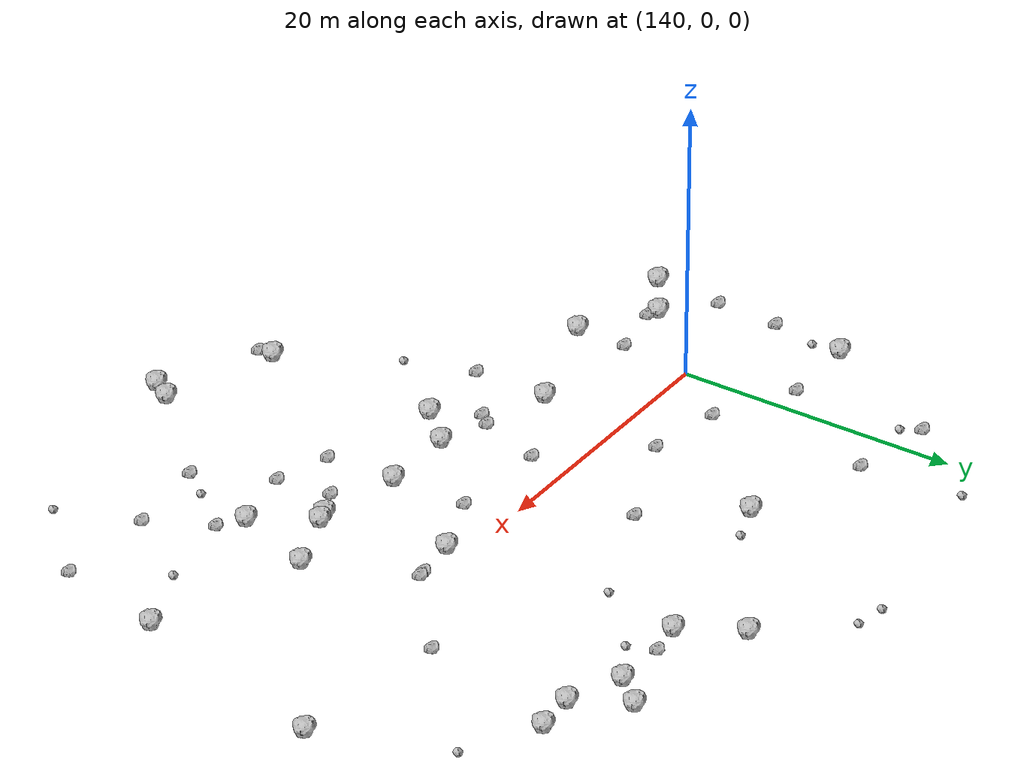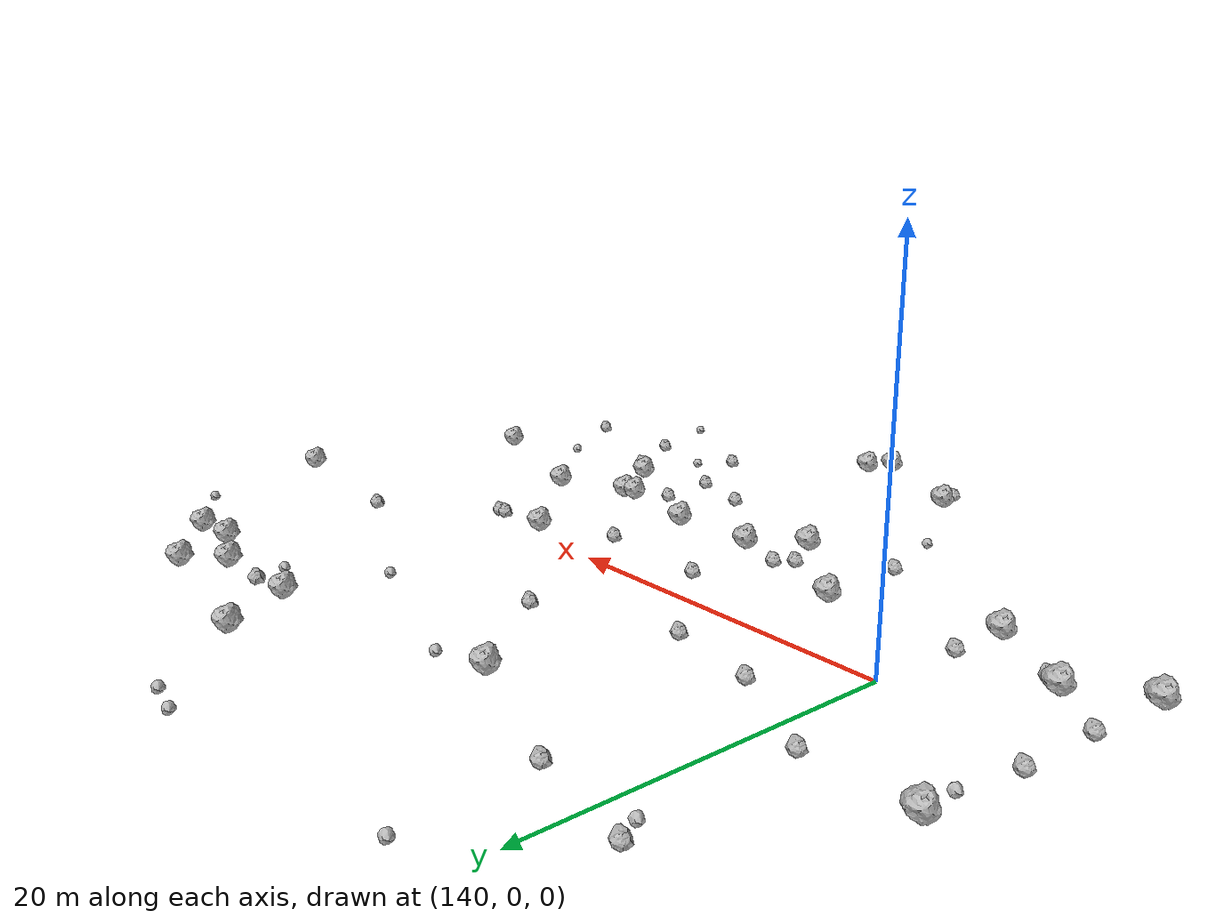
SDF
<sdf version="1.6">
 <world name="default">
  <include><uri>model://sun</uri></include>
  <model name="rock1_4_2">
   <include><uri>model://rock1</uri><pose>161.69526355006286 -8.525875678568418 0.5 0 0 0</pose></include>
  </model>
  <model name="rock1_4_3">
   <include><uri>model://rock1</uri><pose>172.77117775496242 -7.899467867519597 0.5 0 0 0</pose></include>
  </model>
  <model name="rock1_4_4">
   <include><uri>model://rock1</uri><pose>167.47410529267674 -9.852245993962935 0.5 0 0 0</pose></include>
  </model>
  <model name="rock1_4_5">
   <include><uri>model://rock1</uri><pose>168.23202391982647 -9.653271010893029 0.5 0 0 0</pose></include>
  </model>
  <model name="rock1_4_6">
   <include><uri>model://rock1</uri><pose>160.8360853337788 -28.191836001266278 0.5 0 0 0</pose></include>
  </model>
  <model name="rock1_4_7">
   <include><uri>model://rock1</uri><pose>172.31116689686385 15.83350924911663 0.5 0 0 0</pose></include>
  </model>
  <model name="rock1_4_8">
   <include><uri>model://rock1</uri><pose>132.35718022633182 7.265210884816675 0.5 0 0 0</pose></include>
  </model>
  <model name="rock1_4_9">
   <include><uri>model://rock1</uri><pose>179.06493883241507 14.530867061956414 0.5 0 0 0</pose></include>
  </model>
  <model name="rock1_4_10">
   <include><uri>model://rock1</uri><pose>187.3875729603317 2.8925439765310443 0.5 0 0 0</pose></include>
  </model>
  <model name="rock1_4_11">
   <include><uri>model://rock1</uri><pose>166.11293153561246 15.523923665274744 0.5 0 0 0</pose></include>
  </model>
  <model name="rock1_4_12">
   <include><uri>model://rock1</uri><pose>174.16174171332023 17.870499443776318 0.5 0 0 0</pose></include>
  </model>
  <model name="rock1_4_13">
   <include><uri>model://rock1</uri><pose>147.90602200392684 -6.013456500330854 0.5 0 0 0</pose></include>
  </model>
  <model name="rock1_4_14">
   <include><uri>model://rock1</uri><pose>176.14742862572683 14.292358955499097 0.5 0 0 0</pose></include>
  </model>
  <model name="rock1_4_15">
   <include><uri>model://rock1</uri><pose>139.57133838225644 -8.892626098683124 0.5 0 0 0</pose></include>
  </model>
  <model name="rock1_4_16">
   <include><uri>model://rock1</uri><pose>170.75473794583135 -13.601720094275937 0.5 0 0 0</pose></include>
  </model>
  <model name="rock1_4_17">
   <include><uri>model://rock1</uri><pose>131.1908565304941 -7.846225018016916 0.5 0 0 0</pose></include>
  </model>
  <model name="rock1_4_18">
   <include><uri>model://rock1</uri><pose>161.78643454147783 -26.679996992049052 0.5 0 0 0</pose></include>
  </model>
  <model name="rock1_4_19">
   <include><uri>model://rock1</uri><pose>183.41409723096135 -11.615067270590586 0.5 0 0 0</pose></include>
  </model>
  <model name="rock1_4_20">
   <include><uri>model://rock1</uri><pose>166.2943645747454 -1.2363981803120794 0.5 0 0 0</pose></include>
  </model>
  <model name="rock1_4_21">
   <include><uri>model://rock1</uri><pose>153.633341609953 -23.95607967481787 0.5 0 0 0</pose></include>
  </model>
  <model name="rock1_4_22">
   <include><uri>model://rock1</uri><pose>163.77545590862042 19.530835858995175 0.5 0 0 0</pose></include>
  </model>
  <model name="rock1_4_23">
   <include><uri>model://rock1</uri><pose>156.2267375343245 -8.575916024498728 0.5 0 0 0</pose></include>
  </model>
  <model name="rock1_4_24">
   <include><uri>model://rock1</uri><pose>134.65168880717903 -5.621083808789148 0.5 0 0 0</pose></include>
  </model>
  <model name="rock1_4_25">
   <include><uri>model://rock1</uri><pose>153.74145056427585 -11.194847789820244 0.5 0 0 0</pose></include>
  </model>
  <model name="rock1_4_26">
   <include><uri>model://rock1</uri><pose>152.04764083594245 12.44603919069555 0.5 0 0 0</pose></include>
  </model>
  <model name="rock2_4_0">
   <include><uri>model://rock2</uri><pose>138.02862049417985 7.380732795546734 0.3 0 0 0</pose></include>
  </model>
  <model name="rock2_4_1">
   <include><uri>model://rock2</uri><pose>165.76181989340665 -14.7337509473507 0.3 0 0 0</pose></include>
  </model>
  <model name="rock2_4_2">
   <include><uri>model://rock2</uri><pose>147.7956192247981 -11.465359258381675 0.3 0 0 0</pose></include>
  </model>
  <model name="rock2_4_3">
   <include><uri>model://rock2</uri><pose>135.35644027351938 -6.0152407146376845 0.3 0 0 0</pose></include>
  </model>
  <model name="rock2_4_4">
   <include><uri>model://rock2</uri><pose>153.5936644943896 -25.09722213554228 0.3 0 0 0</pose></include>
  </model>
  <model name="rock2_4_5">
   <include><uri>model://rock2</uri><pose>148.9767685873613 3.3895784534242566 0.3 0 0 0</pose></include>
  </model>
  <model name="rock2_4_6">
   <include><uri>model://rock2</uri><pose>181.63371800045275 -19.2903223889849 0.3 0 0 0</pose></include>
  </model>
  <model name="rock2_4_7">
   <include><uri>model://rock2</uri><pose>151.98799895823498 -8.182889903066929 0.3 0 0 0</pose></include>
  </model>
  <model name="rock2_4_8">
   <include><uri>model://rock2</uri><pose>161.843729683202 -13.55547908520131 0.3 0 0 0</pose></include>
  </model>
  <model name="rock2_4_9">
   <include><uri>model://rock2</uri><pose>172.29290214960332 -14.78763876928928 0.3 0 0 0</pose></include>
  </model>
  <model name="rock2_4_10">
   <include><uri>model://rock2</uri><pose>156.55746206105982 6.613182623166431 0.3 0 0 0</pose></include>
  </model>
  <model name="rock2_4_11">
   <include><uri>model://rock2</uri><pose>131.4012875251271 -2.806109520146883 0.3 0 0 0</pose></include>
  </model>
  <model name="rock2_4_12">
   <include><uri>model://rock2</uri><pose>168.44256482954017 15.903793427992746 0.3 0 0 0</pose></include>
  </model>
  <model name="rock2_4_13">
   <include><uri>model://rock2</uri><pose>143.65709802403964 4.381503143839119 0.3 0 0 0</pose></include>
  </model>
  <model name="rock2_4_14">
   <include><uri>model://rock2</uri><pose>139.53436654045188 -5.145972936695948 0.3 0 0 0</pose></include>
  </model>
  <model name="rock2_4_15">
   <include><uri>model://rock2</uri><pose>168.28846052475856 -19.83371184558549 0.3 0 0 0</pose></include>
  </model>
  <model name="rock2_4_16">
   <include><uri>model://rock2</uri><pose>152.78915290977872 -7.269555055972688 0.3 0 0 0</pose></include>
  </model>
  <model name="rock2_4_17">
   <include><uri>model://rock2</uri><pose>169.77408432788548 -0.802059707845185 0.3 0 0 0</pose></include>
  </model>
  <model name="rock2_4_18">
   <include><uri>model://rock2</uri><pose>175.98152188229764 4.348575253562679 0.3 0 0 0</pose></include>
  </model>
  <model name="rock2_4_19">
   <include><uri>model://rock2</uri><pose>143.6202613598535 15.605432712348318 0.3 0 0 0</pose></include>
  </model>
  <model name="rock2_4_20">
   <include><uri>model://rock2</uri><pose>131.61873255351352 1.8489107165513765 0.3 0 0 0</pose></include>
  </model>
  <model name="rock2_4_21">
   <include><uri>model://rock2</uri><pose>137.60089130200848 16.715116007039406 0.3 0 0 0</pose></include>
  </model>
  <model name="rock2_4_22">
   <include><uri>model://rock2</uri><pose>161.49050786220914 -3.1285094925263515 0.3 0 0 0</pose></include>
  </model>
  <model name="rock2_4_23">
   <include><uri>model://rock2</uri><pose>169.29894519282146 -0.867043095787075 0.3 0 0 0</pose></include>
  </model>
  <model name="rock2_4_24">
   <include><uri>model://rock2</uri><pose>174.4504566630851 -19.031739393678606 0.3 0 0 0</pose></include>
  </model>
  <model name="rock2_4_25">
   <include><uri>model://rock2</uri><pose>154.40041718319307 -2.66183310376762 0.3 0 0 0</pose></include>
  </model>
  <model name="rock2_4_26">
   <include><uri>model://rock2</uri><pose>165.2551199839111 -10.890716177436268 0.3 0 0 0</pose></include>
  </model>
  <model name="rock3_4_0">
   <include><uri>model://rock3</uri><pose>178.2170225143497 -13.74681498207375 0.2 0 0 0</pose></include>
  </model>
  <model name="rock3_4_1">
   <include><uri>model://rock3</uri><pose>164.69055889854977 9.915100539440125 0.2 0 0 0</pose></include>
  </model>
  <model name="rock3_4_2">
   <include><uri>model://rock3</uri><pose>176.42073811285383 -24.640825772386908 0.2 0 0 0</pose></include>
  </model>
  <model name="rock3_4_3">
   <include><uri>model://rock3</uri><pose>154.67235019963172 13.344666776444818 0.2 0 0 0</pose></include>
  </model>
  <model name="rock3_4_4">
   <include><uri>model://rock3</uri><pose>156.859802717832 24.988366219447705 0.2 0 0 0</pose></include>
  </model>
  <model name="rock3_4_5">
   <include><uri>model://rock3</uri><pose>183.95213546879728 11.698532877158101 0.2 0 0 0</pose></include>
  </model>
  <model name="rock3_4_6">
   <include><uri>model://rock3</uri><pose>169.0524786987683 13.968573676958336 0.2 0 0 0</pose></include>
  </model>
  <model name="rock3_4_7">
   <include><uri>model://rock3</uri><pose>142.91228584555634 22.687804035499077 0.2 0 0 0</pose></include>
  </model>
  <model name="rock3_4_8">
   <include><uri>model://rock3</uri><pose>169.7332380172486 -17.900185262165863 0.2 0 0 0</pose></include>
  </model>
  <model name="rock3_4_9">
   <include><uri>model://rock3</uri><pose>138.27740965208383 15.359385682285506 0.2 0 0 0</pose></include>
  </model>
  <model name="rock3_4_10">
   <include><uri>model://rock3</uri><pose>149.18562050157857 -16.40193759907941 0.2 0 0 0</pose></include>
  </model>
  <model name="rock3_4_11">
   <include><uri>model://rock3</uri><pose>159.0512339440616 24.61831293161037 0.2 0 0 0</pose></include>
  </model>
  <model name="rock3_4_12">
   <include><uri>model://rock3</uri><pose>132.3282663084271 5.110228796698607 0.2 0 0 0</pose></include>
  </model>
 </world>
</sdf>
